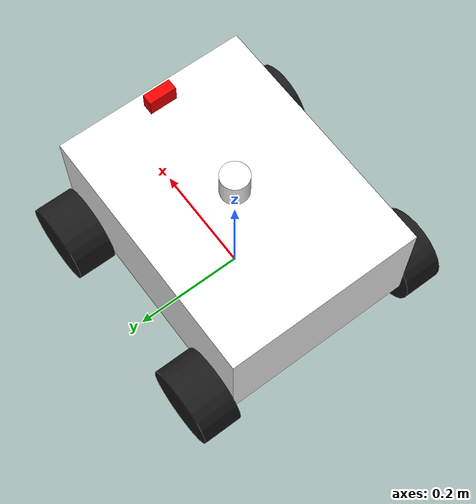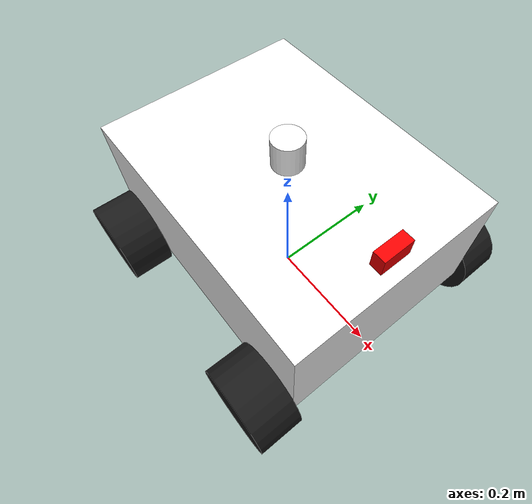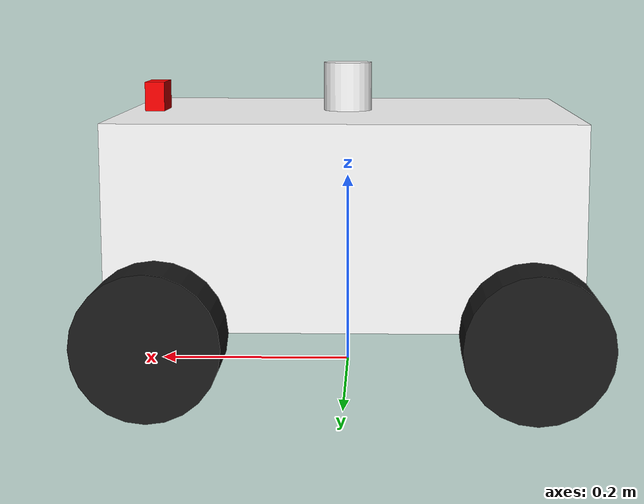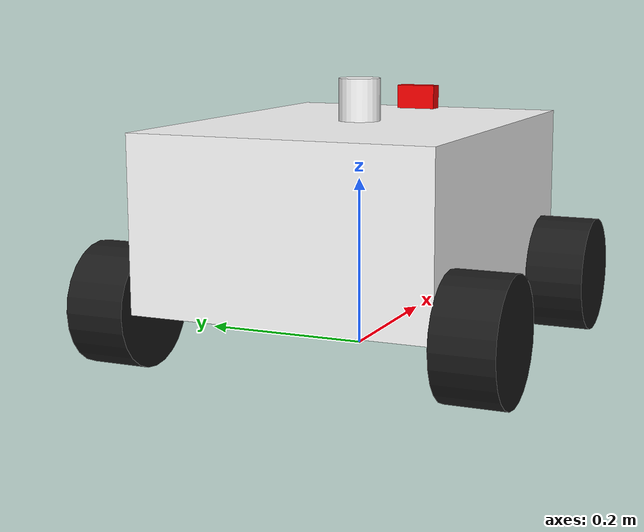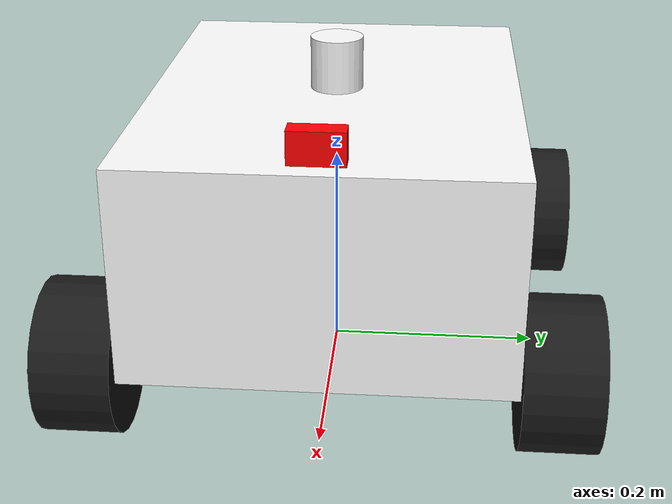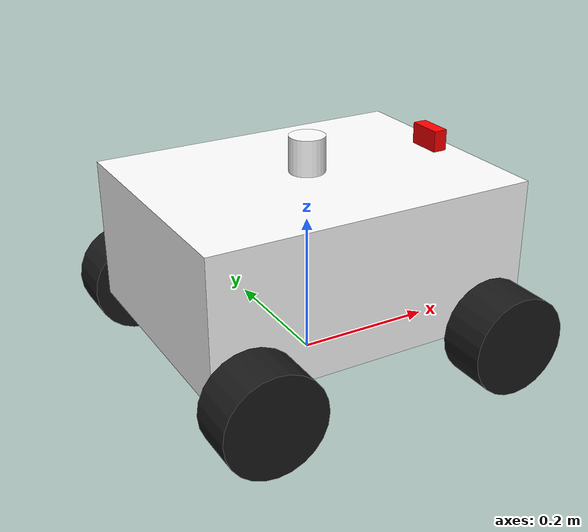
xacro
<?xml version="1.0"?>
<robot xmlns:xacro="http://www.ros.org/wiki/xacro" name="my_robot">

    <xacro:property name="body_mass" value="25.0" />
    <xacro:property name="body_length" value="0.46" />
    <xacro:property name="body_width" value="0.35" />
    <xacro:property name="body_height" value="0.20" />

    <xacro:property name="wheel_radius" value="0.07" />
    <xacro:property name="wheel_thickness" value="0.07" />
    <xacro:property name="wheel_mass" value="3.0" />
    <xacro:property name="steering_mass" value="0.01" />

    <material name="black">
        <color rgba="0.1 0.1 0.1 1" />
    </material>
    <material name="white">
        <color rgba="1 1 1 1" />
    </material>

    <link name="base_footprint">
        <origin xyz="0 0 0" rpy="0 0 0" />
    </link>

    <link name="base_link" />

    <joint name="base_joint" type="fixed">
        <parent link="base_footprint" />
        <child link="base_link" />
        <origin xyz="0 0 0" rpy="0 0 0" />
    </joint>

    <link name="chassis_link">
        <inertial>
            <origin xyz="0 0 0" rpy="0 0 0" />
            <mass value="${body_mass}" />
            <inertia ixx="${body_mass/12 * (body_width*body_width + body_height*body_height)}"
                ixy="0" ixz="0"
                iyy="${body_mass/12 * (body_length*body_length + body_height*body_height)}" iyz="0"
                izz="${body_mass/12 * (body_width*body_width + body_length*body_length)}" />
        </inertial>
        <visual>
            <geometry>
                <box size="${body_length} ${body_width} ${body_height}" />
            </geometry>
            <material name="white" />
        </visual>
        <collision>
            <origin xyz="0 0 0.02" rpy="0 0 0" />
            <geometry>
                <box size="${body_length - 0.04} ${body_width - 0.04} ${body_height - 0.04}" />
            </geometry>
        </collision>
    </link>

    <joint name="chassis_joint" type="fixed">
        <parent link="base_link" />
        <child link="chassis_link" />
        <origin xyz="0 0 ${wheel_radius + body_height/2 - 0.001}" rpy="0 0 0" />
    </joint>

    <link name="fr_left_steer_link">
        <inertial>
            <origin xyz="0 0 0" rpy="0 0 0" />
            <mass value="${steering_mass}" />
            <inertia ixx="0.0001" ixy="0" ixz="0" iyy="0.0001" iyz="0" izz="0.0001" />
        </inertial>
    </link>

    <joint name="fr_left_steer_joint" type="revolute">
        <origin xyz="${body_length/2 - 0.05} ${body_width/2 + wheel_thickness/2} -${body_height/2}" rpy="0 0 0" />
        <parent link="chassis_link" />
        <child link="fr_left_steer_link" />
        <axis xyz="0 0 1" />
        <limit upper="0.6" lower="-0.6" effort="50.0" velocity="5.0" />
    </joint>

    <link name="fr_left_wheel_link">
        <inertial>
            <mass value="${wheel_mass}" />
            <inertia ixx="${wheel_mass/12*(3*wheel_radius*wheel_radius + wheel_thickness*wheel_thickness)}" ixy="0" ixz="0" iyy="${wheel_mass/12*(3*wheel_radius*wheel_radius + wheel_thickness*wheel_thickness)}" iyz="0" izz="${wheel_mass/2 * wheel_radius*wheel_radius}" />
        </inertial>
        <visual>
            <geometry><cylinder radius="${wheel_radius}" length="${wheel_thickness}" /></geometry>
            <material name="black" />
        </visual>
        <collision>
            <geometry><cylinder radius="${wheel_radius}" length="${wheel_thickness}" /></geometry>
        </collision>
    </link>

    <joint name="fr_left_wheel_joint" type="continuous">
        <origin xyz="0 0 0" rpy="-1.5708 0 0" />
        <parent link="fr_left_steer_link" />
        <child link="fr_left_wheel_link" />
        <axis xyz="0 0 1" />
        <dynamics friction="0.8" damping="0.5" />
        <limit effort="200" velocity="100" />
    </joint>

    <link name="fr_right_steer_link">
        <inertial>
            <origin xyz="0 0 0" rpy="0 0 0" />
            <mass value="${steering_mass}" />
            <inertia ixx="0.0001" ixy="0" ixz="0" iyy="0.0001" iyz="0" izz="0.0001" />
        </inertial>
    </link>

    <joint name="fr_right_steer_joint" type="revolute">
        <origin xyz="${body_length/2 - 0.05} -${body_width/2 + wheel_thickness/2} -${body_height/2}" rpy="0 0 0" />
        <parent link="chassis_link" />
        <child link="fr_right_steer_link" />
        <axis xyz="0 0 1" />
        <limit upper="0.6" lower="-0.6" effort="50.0" velocity="5.0" />
    </joint>

    <link name="fr_right_wheel_link">
        <inertial>
            <mass value="${wheel_mass}" />
            <inertia ixx="${wheel_mass/12*(3*wheel_radius*wheel_radius + wheel_thickness*wheel_thickness)}" ixy="0" ixz="0" iyy="${wheel_mass/12*(3*wheel_radius*wheel_radius + wheel_thickness*wheel_thickness)}" iyz="0" izz="${wheel_mass/2 * wheel_radius*wheel_radius}" />
        </inertial>
        <visual>
            <geometry><cylinder radius="${wheel_radius}" length="${wheel_thickness}" /></geometry>
            <material name="black" />
        </visual>
        <collision>
            <geometry><cylinder radius="${wheel_radius}" length="${wheel_thickness}" /></geometry>
        </collision>
    </link>

    <joint name="fr_right_wheel_joint" type="continuous">
        <origin xyz="0 0 0" rpy="-1.5708 0 0" />
        <parent link="fr_right_steer_link" />
        <child link="fr_right_wheel_link" />
        <axis xyz="0 0 1" />
        <dynamics friction="0.8" damping="0.5" />
        <limit effort="200" velocity="100" />
    </joint>

    <link name="re_left_wheel_link">
        <inertial>
            <mass value="${wheel_mass}" />
            <inertia ixx="${wheel_mass/12*(3*wheel_radius*wheel_radius + wheel_thickness*wheel_thickness)}" ixy="0" ixz="0" iyy="${wheel_mass/12*(3*wheel_radius*wheel_radius + wheel_thickness*wheel_thickness)}" iyz="0" izz="${wheel_mass/2 * wheel_radius*wheel_radius}" />
        </inertial>
        <visual>
            <geometry><cylinder radius="${wheel_radius}" length="${wheel_thickness}" /></geometry>
            <material name="black" />
        </visual>
        <collision>
            <geometry><cylinder radius="${wheel_radius}" length="${wheel_thickness}" /></geometry>
        </collision>
    </link>

    <joint name="re_left_wheel_joint" type="continuous">
        <origin xyz="-${body_length/2 - 0.05} ${body_width/2 + wheel_thickness/2} -${body_height/2}" rpy="-1.5708 0 0" />
        <parent link="chassis_link" />
        <child link="re_left_wheel_link" />
        <axis xyz="0 0 1" />
        <dynamics friction="0.8" damping="0.5" />
        <limit effort="200" velocity="100" />
    </joint>

    <link name="re_right_wheel_link">
        <inertial>
            <mass value="${wheel_mass}" />
            <inertia ixx="${wheel_mass/12*(3*wheel_radius*wheel_radius + wheel_thickness*wheel_thickness)}" ixy="0" ixz="0" iyy="${wheel_mass/12*(3*wheel_radius*wheel_radius + wheel_thickness*wheel_thickness)}" iyz="0" izz="${wheel_mass/2 * wheel_radius*wheel_radius}" />
        </inertial>
        <visual>
            <geometry><cylinder radius="${wheel_radius}" length="${wheel_thickness}" /></geometry>
            <material name="black" />
        </visual>
        <collision>
            <geometry><cylinder radius="${wheel_radius}" length="${wheel_thickness}" /></geometry>
        </collision>
    </link>

    <joint name="re_right_wheel_joint" type="continuous">
        <origin xyz="-${body_length/2 - 0.05} -${body_width/2 + wheel_thickness/2} -${body_height/2}" rpy="-1.5708 0 0" />
        <parent link="chassis_link" />
        <child link="re_right_wheel_link" />
        <axis xyz="0 0 1" />
        <dynamics friction="0.8" damping="0.5" />
        <limit effort="200" velocity="100" />
    </joint>

   <link name="laser_link">
        <visual>
            <geometry><cylinder length="0.06" radius="0.025"/></geometry>
            <origin rpy="0 0 0" xyz="0 0 -0.03"/>
            <material name="white" />
        </visual>
        <inertial>
            <mass value="0.1"/>
            <inertia ixx="0.001" ixy="0.0" ixz="0.0" iyy="0.001" iyz="0.0" izz="0.001"/>
            <origin xyz="0 0 -0.03"/>
        </inertial>
    </link>

    <joint name="laser_joint" type="fixed">
        <parent link="chassis_link"/>
        <child link="laser_link"/>
        <origin rpy="0 0 0" xyz="0 0 ${body_height/2 + 0.05}"/>
    </joint>

    <gazebo reference="laser_link">
        <material>Gazebo/Black</material>
        <sensor name="laser_sensor" type="ray">
            <always_on>true</always_on>
            <visualize>true</visualize>
            <update_rate>10</update_rate>
            <pose>0 0 0 0 0 0</pose>
            <ray>
                <scan>
                    <horizontal>
                        <samples>360</samples>
                        <resolution>1.000000</resolution>
                        <min_angle>-3.14159</min_angle>
                        <max_angle>3.14159</max_angle>
                    </horizontal>
                </scan>
                <range>
                    <min>0.0000</min>
                    <max>25.0</max>
                    <resolution>0.015000</resolution>
                </range>
                <noise>
                    <type>gaussian</type>
                    <mean>0.0</mean>
                    <stddev>0.01</stddev>
                </noise>
            </ray>
            <plugin name="laserscan" filename="libgazebo_ros_ray_sensor.so">
                <ros><remapping>~/out:=scan</remapping></ros>
                <output_type>sensor_msgs/LaserScan</output_type>
                <frame_name>laser_link</frame_name>
            </plugin>
        </sensor>
    </gazebo>

    <link name="imu_link">
        <visual>
            <origin xyz="0 0 0" rpy="0 0 0"/>
            <geometry><box size="0.02 0.02 0.02"/></geometry>
            <material name="black"/>
        </visual>
        <inertial>
            <mass value="0.1"/>
            <inertia ixx="0.00019" ixy="0" ixz="0" iyy="0.00019" iyz="0" izz="0.00036"/>
        </inertial>
    </link>

    <joint name="imu_joint" type="fixed">
        <parent link="chassis_link" /> <child link="imu_link" />
        <origin xyz="0 0 ${body_height/2 + 0.01}" />
    </joint>

    <gazebo reference="imu_link">
        <material>Gazebo/Black</material>
        <sensor name="imu_sensor" type="imu">
            <plugin filename="libgazebo_ros_imu_sensor.so" name="imu_plugin">
                <ros>
                    <namespace>/</namespace>
                    <remapping>~/out:=imu</remapping>
                </ros>
                <initial_orientation_as_reference>false</initial_orientation_as_reference>
            </plugin>
            <always_on>true</always_on>
            <update_rate>100</update_rate>
            <visualize>true</visualize>
        </sensor>
    </gazebo>

    <link name="camera_link">
        <visual>
        <geometry>
            <box size="0.02 0.05 0.03"/> </geometry>
        <material name="red">
            <color rgba="1.0 0.0 0.0 1.0" />
        </material>
        </visual>
        <inertial>
        <mass value="0.01"/>
        <inertia ixx="0.0001" ixy="0" ixz="0" iyy="0.0001" iyz="0" izz="0.0001"/>
        </inertial>
    </link>

    <joint name="camera_joint" type="fixed">
        <parent link="chassis_link"/>
        <child link="camera_link"/>
        <origin xyz="0.20 0 ${body_height/2 + 0.015}" rpy="0 0 0"/>
    </joint>

    <xacro:macro name="wheel_friction" params="link_name">
        <gazebo reference="${link_name}">
            <material>Gazebo/DarkGrey</material>
            <mu1>1.2</mu1>
            <mu2>1.2</mu2>
            <kp>10000000.0</kp>
            <kd>1.0</kd>
            <minDepth>0.001</minDepth> </gazebo>
    </xacro:macro>

    <xacro:wheel_friction link_name="fr_left_wheel_link" />
    <xacro:wheel_friction link_name="fr_right_wheel_link" />
    <xacro:wheel_friction link_name="re_left_wheel_link" />
    <xacro:wheel_friction link_name="re_right_wheel_link" />

</robot>
